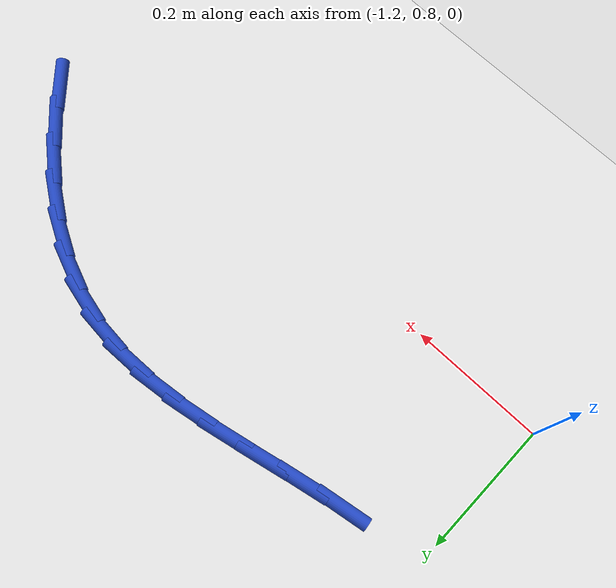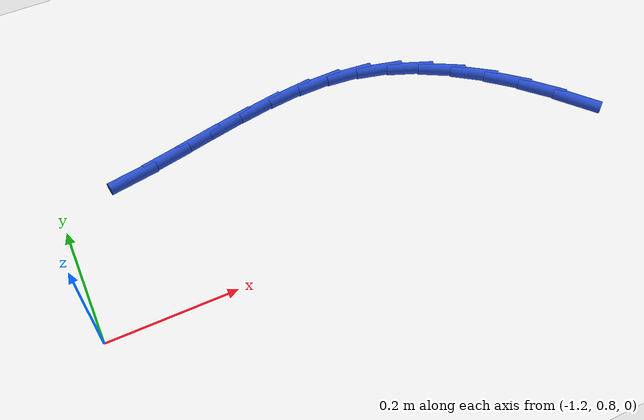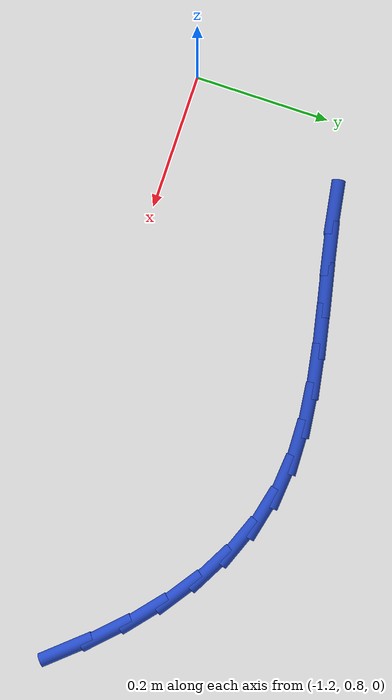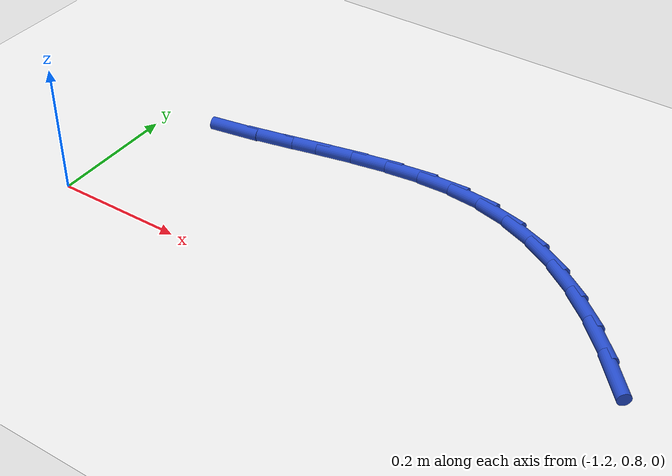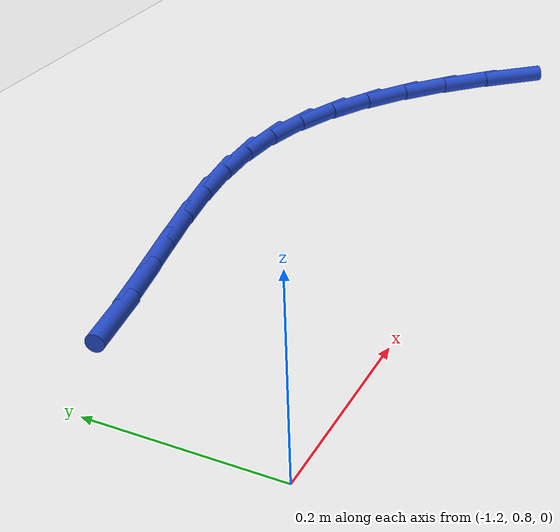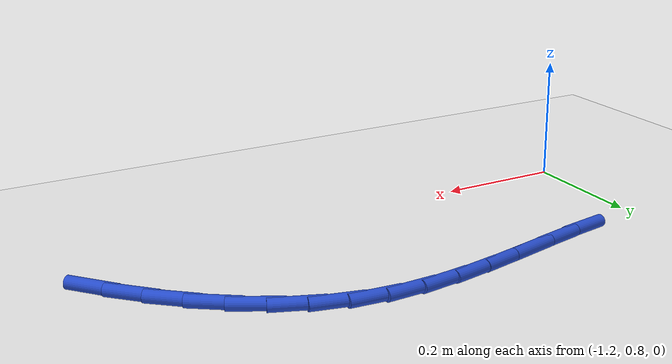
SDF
<sdf version="1.6">
 <world name="default">
  <model name="ground_plane">
   <static>1</static>
   <link name="link">
    <collision name="collision">
     <geometry><plane><normal>0 0 1</normal><size>100 100</size></plane></geometry>
     <surface><friction><ode><mu>100</mu><mu2>50</mu2></ode></friction></surface>
    </collision>
    <visual name="visual">
     <cast_shadows>0</cast_shadows>
     <geometry><plane><normal>0 0 1</normal><size>100 100</size></plane></geometry>
     <material>
      <script><uri>file://media/materials/scripts/gazebo.material</uri><name>Gazebo/WhiteGlow</name></script>
     </material>
    </visual>
   </link>
  </model>
  <model name="line">
   <link name="link_16">
    <pose>-0.3631009664330733 0.8863385548859709 0.01 0 1.57 -0.8540929409352416</pose>
    <collision name="collision">
     <geometry><cylinder><radius>0.01</radius><length>0.08</length></cylinder></geometry>
    </collision>
    <visual name="visual">
     <material>
      <script><name>Gazebo/Blue</name><uri>file://media/materials/scripts/gazebo.material</uri></script>
     </material>
     <geometry><cylinder><radius>0.01</radius><length>0.08</length></cylinder></geometry>
    </visual>
   </link>
   <link name="link_17">
    <pose>-0.4030279404262318 0.9321656707982757 0.01 0 1.57 -0.7848935288514111</pose>
    <collision name="collision">
     <geometry><cylinder><radius>0.01</radius><length>0.08</length></cylinder></geometry>
    </collision>
    <visual name="visual">
     <material>
      <script><name>Gazebo/Blue</name><uri>file://media/materials/scripts/gazebo.material</uri></script>
     </material>
     <geometry><cylinder><radius>0.01</radius><length>0.08</length></cylinder></geometry>
    </visual>
   </link>
   <link name="link_18">
    <pose>-0.44481126528623866 0.9739068463063785 0.01 0 1.57 -0.7037568661876216</pose>
    <collision name="collision">
     <geometry><cylinder><radius>0.01</radius><length>0.08</length></cylinder></geometry>
    </collision>
    <visual name="visual">
     <material>
      <script><name>Gazebo/Blue</name><uri>file://media/materials/scripts/gazebo.material</uri></script>
     </material>
     <geometry><cylinder><radius>0.01</radius><length>0.08</length></cylinder></geometry>
    </visual>
   </link>
   <link name="link_19">
    <pose>-0.48845595287763155 1.01094944439868 0.01 0 1.57 -0.6088601335457959</pose>
    <collision name="collision">
     <geometry><cylinder><radius>0.01</radius><length>0.08</length></cylinder></geometry>
    </collision>
    <visual name="visual">
     <material>
      <script><name>Gazebo/Blue</name><uri>file://media/materials/scripts/gazebo.material</uri></script>
     </material>
     <geometry><cylinder><radius>0.01</radius><length>0.08</length></cylinder></geometry>
    </visual>
   </link>
   <link name="link_20">
    <pose>-0.5339670150649478 1.0426808280635802 0.01 0 1.57 -0.4987375418055603</pose>
    <collision name="collision">
     <geometry><cylinder><radius>0.01</radius><length>0.08</length></cylinder></geometry>
    </collision>
    <visual name="visual">
     <material>
      <script><name>Gazebo/Blue</name><uri>file://media/materials/scripts/gazebo.material</uri></script>
     </material>
     <geometry><cylinder><radius>0.01</radius><length>0.08</length></cylinder></geometry>
    </visual>
   </link>
   <link name="link_21">
    <pose>-0.5813494637127252 1.0684883602894792 0.01 0 1.57 -0.3729145310128177</pose>
    <collision name="collision">
     <geometry><cylinder><radius>0.01</radius><length>0.08</length></cylinder></geometry>
    </collision>
    <visual name="visual">
     <material>
      <script><name>Gazebo/Blue</name><uri>file://media/materials/scripts/gazebo.material</uri></script>
     </material>
     <geometry><cylinder><radius>0.01</radius><length>0.08</length></cylinder></geometry>
    </visual>
   </link>
   <link name="link_22">
    <pose>-0.6306083106855014 1.087759404064779 0.01 0 1.57 -0.23273749946969366</pose>
    <collision name="collision">
     <geometry><cylinder><radius>0.01</radius><length>0.08</length></cylinder></geometry>
    </collision>
    <visual name="visual">
     <material>
      <script><name>Gazebo/Blue</name><uri>file://media/materials/scripts/gazebo.material</uri></script>
     </material>
     <geometry><cylinder><radius>0.01</radius><length>0.08</length></cylinder></geometry>
    </visual>
   </link>
   <link name="link_23">
    <pose>-0.6817485678478137 1.0998813223778783 0.01 0 1.57 -0.08806420327895416</pose>
    <collision name="collision">
     <geometry><cylinder><radius>0.01</radius><length>0.08</length></cylinder></geometry>
    </collision>
    <visual name="visual">
     <material>
      <script><name>Gazebo/Blue</name><uri>file://media/materials/scripts/gazebo.material</uri></script>
     </material>
     <geometry><cylinder><radius>0.01</radius><length>0.08</length></cylinder></geometry>
    </visual>
   </link>
   <link name="link_24">
    <pose>-0.7347358196766278 1.104559702839045 0.01 0 1.57 0.031028135101251485</pose>
    <collision name="collision">
     <geometry><cylinder><radius>0.01</radius><length>0.08</length></cylinder></geometry>
    </collision>
    <visual name="visual">
     <material>
      <script><name>Gazebo/Blue</name><uri>file://media/materials/scripts/gazebo.material</uri></script>
     </material>
     <geometry><cylinder><radius>0.01</radius><length>0.08</length></cylinder></geometry>
    </visual>
   </link>
   <link name="link_25">
    <pose>-0.7893666621773261 1.1028640654867536 0.01 0 1.57 0.11787490686192272</pose>
    <collision name="collision">
     <geometry><cylinder><radius>0.01</radius><length>0.08</length></cylinder></geometry>
    </collision>
    <visual name="visual">
     <material>
      <script><name>Gazebo/Blue</name><uri>file://media/materials/scripts/gazebo.material</uri></script>
     </material>
     <geometry><cylinder><radius>0.01</radius><length>0.08</length></cylinder></geometry>
    </visual>
   </link>
   <link name="link_26">
    <pose>-0.8453924257300667 1.0962292763120585 0.01 0 1.57 0.1755183784560332</pose>
    <collision name="collision">
     <geometry><cylinder><radius>0.01</radius><length>0.08</length></cylinder></geometry>
    </collision>
    <visual name="visual">
     <material>
      <script><name>Gazebo/Blue</name><uri>file://media/materials/scripts/gazebo.material</uri></script>
     </material>
     <geometry><cylinder><radius>0.01</radius><length>0.08</length></cylinder></geometry>
    </visual>
   </link>
   <link name="link_27">
    <pose>-0.9025644401993714 1.0860902054678108 0.01 0 1.57 0.20722090254712627</pose>
    <collision name="collision">
     <geometry><cylinder><radius>0.01</radius><length>0.08</length></cylinder></geometry>
    </collision>
    <visual name="visual">
     <material>
      <script><name>Gazebo/Blue</name><uri>file://media/materials/scripts/gazebo.material</uri></script>
     </material>
     <geometry><cylinder><radius>0.01</radius><length>0.08</length></cylinder></geometry>
    </visual>
   </link>
   <link name="link_28">
    <pose>-0.9606340354497597 1.0738817231068587 0.01 0 1.57 0.21533089170529365</pose>
    <collision name="collision">
     <geometry><cylinder><radius>0.01</radius><length>0.08</length></cylinder></geometry>
    </collision>
    <visual name="visual">
     <material>
      <script><name>Gazebo/Blue</name><uri>file://media/materials/scripts/gazebo.material</uri></script>
     </material>
     <geometry><cylinder><radius>0.01</radius><length>0.08</length></cylinder></geometry>
    </visual>
   </link>
   <link name="link_29">
    <pose>-1.0193525413457534 1.0610386993820535 0.01 0 1.57 0.20095405798646643</pose>
    <collision name="collision">
     <geometry><cylinder><radius>0.01</radius><length>0.08</length></cylinder></geometry>
    </collision>
    <visual name="visual">
     <material>
      <script><name>Gazebo/Blue</name><uri>file://media/materials/scripts/gazebo.material</uri></script>
     </material>
     <geometry><cylinder><radius>0.01</radius><length>0.08</length></cylinder></geometry>
    </visual>
   </link>
   <link name="link_30">
    <pose>-1.0784712877518727 1.0489960044462447 0.01 0 1.57 0.16398472993592103</pose>
    <collision name="collision">
     <geometry><cylinder><radius>0.01</radius><length>0.08</length></cylinder></geometry>
    </collision>
    <visual name="visual">
     <material>
      <script><name>Gazebo/Blue</name><uri>file://media/materials/scripts/gazebo.material</uri></script>
     </material>
     <geometry><cylinder><radius>0.01</radius><length>0.08</length></cylinder></geometry>
    </visual>
   </link>
  </model>
 </world>
</sdf>
